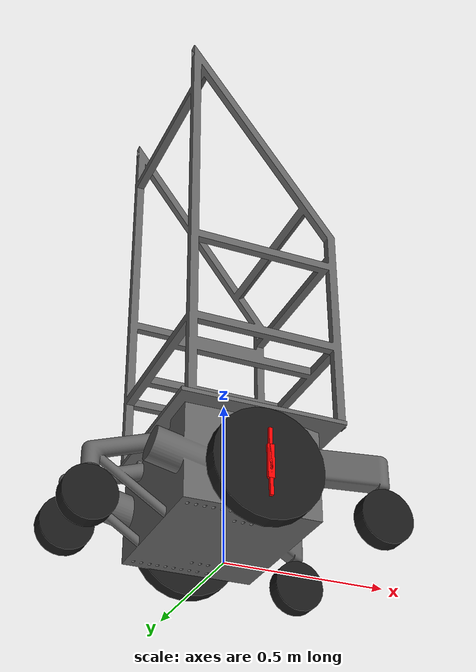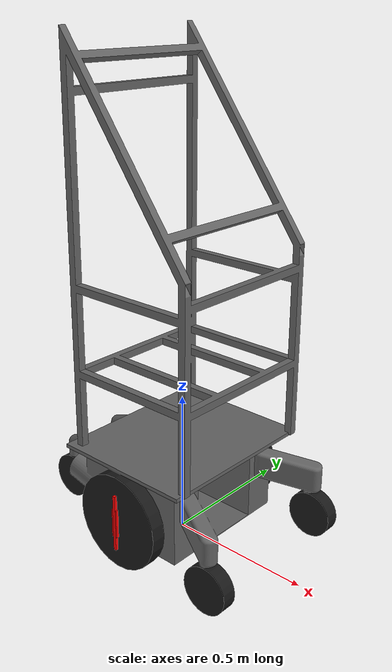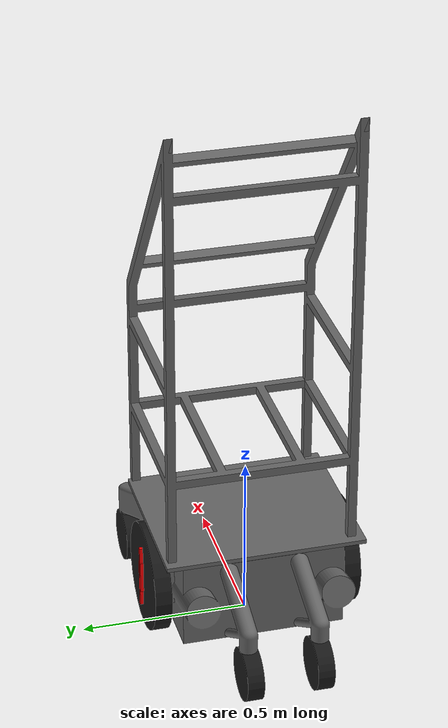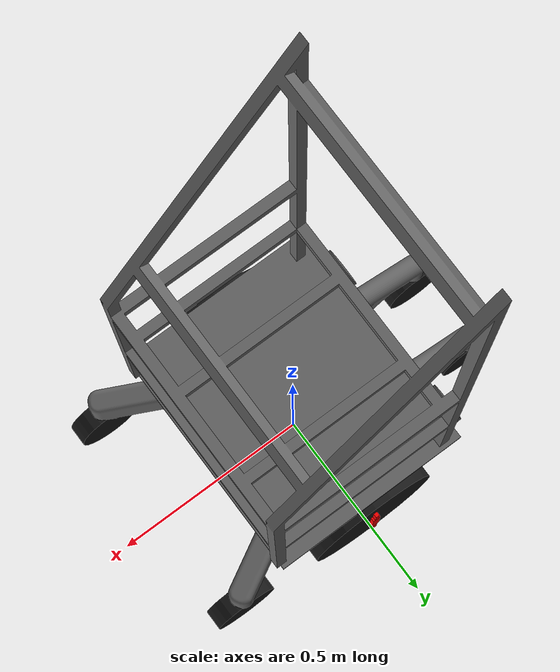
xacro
<?xml version="1.0"?>
<robot name="mantis_visual" xmlns:xacro="http://www.ros.org/wiki/xacro" >

  <xacro:property name="front_caster_x" value="0.36" />
  <xacro:property name="front_caster_y" value="0.275" />
  <xacro:property name="rear_caster_x" value="-0.435" />
  <xacro:property name="rear_caster_y" value="0.105" />
  <xacro:property name="frame_height" value="0.18" />
  <xacro:property name="wheel_radius" value="0.165" />
  <xacro:property name="caster_radius" value="0.08" />
  <xacro:property name="drive_wheel_offset" value="0.29" />

  <xacro:macro name="drive_wheel" params="name y_offset" >
    <link name="${name}_wheel" >
      <visual>
        <geometry>
          <cylinder length="0.05" radius="${wheel_radius}"/>
        </geometry>
        <material name="dark_gray"/>
      </visual>
      <visual>
        <geometry>
          <box size="0.02 0.1 0.07"/>
        </geometry>
        <material name="red"/>
      </visual>
      <visual>
        <geometry>
          <box size="0.01 0.2 0.07"/>
        </geometry>
        <material name="red"/>
      </visual>
    </link>

    <joint name="${name}_wheel_joint" type="continuous" >
      <parent link="body_link" />
      <child link="${name}_wheel" />
      <origin xyz="0 ${y_offset} 0" rpy="-1.5707 0 0" />
      <axis xyz="0 0 1" />
      <limit effort="1000.0" velocity="50.0" />
    </joint>
  </xacro:macro>

  <xacro:macro name="caster_wheel" params="name x_offset y_offset" >
    <link name="${name}_caster" >
      <visual>
        <geometry>
          <cylinder length="0.05" radius="${caster_radius}"/>
        </geometry>
        <material name="dark_gray"/>
      </visual>
    </link>

    <joint name="${name}_caster_joint" type="fixed" >
      <parent link="body_link" />
      <child link="${name}_caster" />
      <origin xyz="${x_offset} ${y_offset} ${-(wheel_radius-caster_radius)}" rpy="-1.5707 0 0" />
    </joint>
  </xacro:macro>

  <xacro:drive_wheel name="left" y_offset="${drive_wheel_offset}" />
  <xacro:drive_wheel name="right" y_offset="${-drive_wheel_offset}" />
  <xacro:caster_wheel name="fl" x_offset="${front_caster_x}" y_offset="${front_caster_y}" />
  <xacro:caster_wheel name="fr" x_offset="${front_caster_x}" y_offset="${-front_caster_y}" />
  <xacro:caster_wheel name="rl" x_offset="${rear_caster_x}" y_offset="${rear_caster_y}" />
  <xacro:caster_wheel name="rr" x_offset="${rear_caster_x}" y_offset="${-rear_caster_y}" />

  <link name="base_footprint" >
  </link>

  <link name="body_link" >
    <visual>
      <origin xyx="0 0 0" rpy="0 0 0" />
      <geometry>
        <mesh filename="package://mantis_model/meshes/mantis_base.stl" scale="1 1 1" />
      </geometry>
      <material name="gray" />
    </visual>

    <visual>
      <origin xyz="0 0 ${frame_height}" rpy="0 0 0" />
      <geometry>
        <mesh filename="package://mantis_model/meshes/mantis_frame.stl" scale="1 1 1" />
      </geometry>
      <material name="gray" />
    </visual>

    <visual>
      <origin xyz="0 0 ${frame_height}" rpy="0 0 0" />
      <geometry>
        <box size="0.5 0.6 0.0127"/>
      </geometry>
      <material name="gray" />
    </visual>
  </link>

  <joint name="base_joint" type="fixed" >
    <parent link="base_footprint" />
    <child link="body_link" />
    <origin xyz="0 0 ${wheel_radius}" rpy="0 0 0" />
  </joint>

  <material name="gray" >
    <color rgba="0.4 0.4 0.4 1.0" />
  </material>

  <material name="dark_gray" >
    <color rgba="0.1 0.1 0.1 1.0" />
  </material>

  <material name="red" >
    <color rgba="1 0 0 1.0" />
  </material>

</robot>
